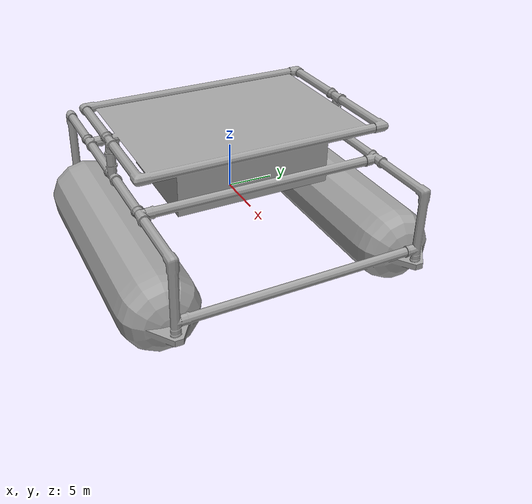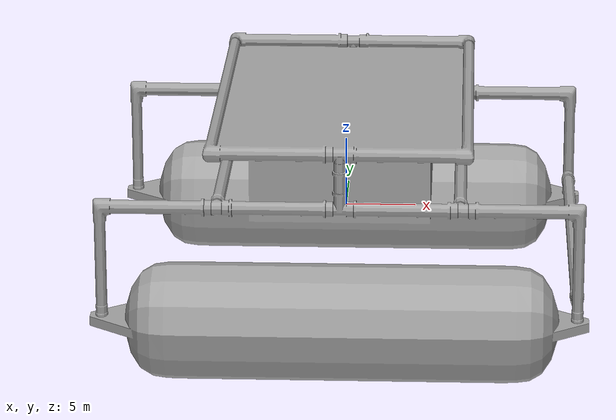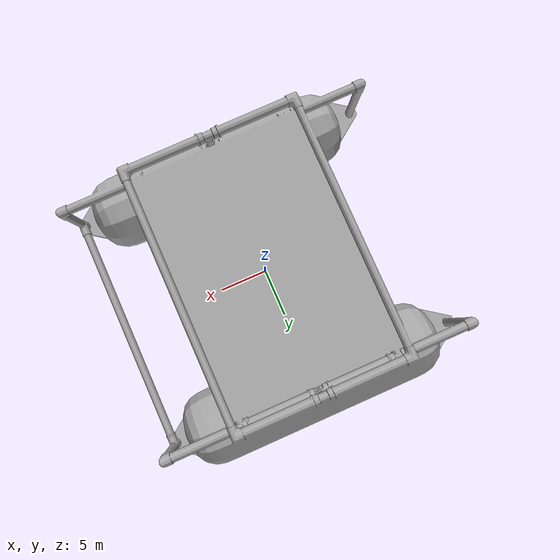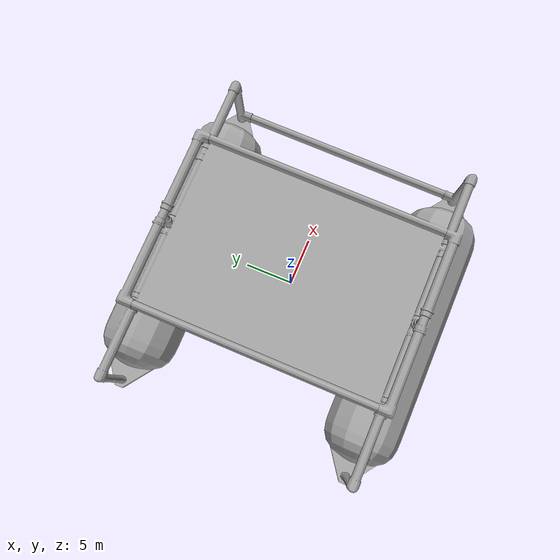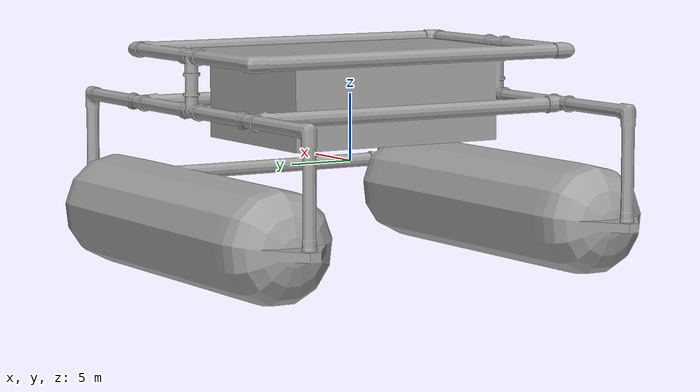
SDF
<?xml version='1.0'?>
<sdf version='1.6'>
    <model name="snapping_turtle">
        <pose>0 0 0.5 0 0 0</pose>
        <static>false</static>

        <link name="base">
            <pose>0 0 0 0 0 0</pose> <!-- Starting position -->

            <inertial>
                <mass>16.0</mass> <!-- Mass of a ~35lbs robot -->
                <inertia>
                    <ixx>1.0</ixx>
                    <ixy>0.0</ixy>
                    <ixz>0.0</ixz>
                    <iyy>1.0</iyy>
                    <iyz>0.0</iyz>
                    <izz>1.0</izz>
                </inertia>
            </inertial>

            <collision name="base_collision">
                <pose>0 0 0 0 0 0</pose>
                <geometry>
                    <box>
                        <size>1 1 1</size>
                    </box>
                </geometry>
            </collision>

            <visual name="base_visual">
                <pose>0 0 0 0 0 0</pose>
                <geometry>
                    <mesh>
                        <uri>model://snapping_turtle/meshes/snapping_turtle.dae</uri>
                        <scale>1 1 1</scale>
                    </mesh>
                </geometry>
            </visual>

        </link>

    </model>

</sdf>
